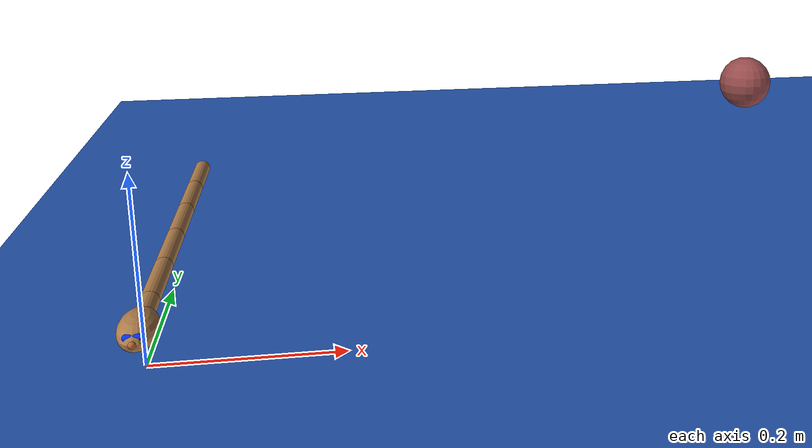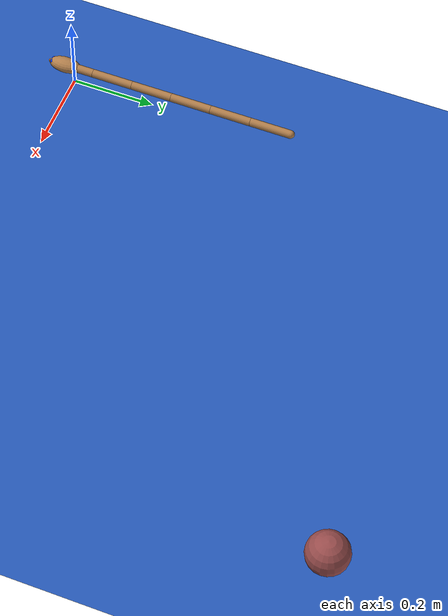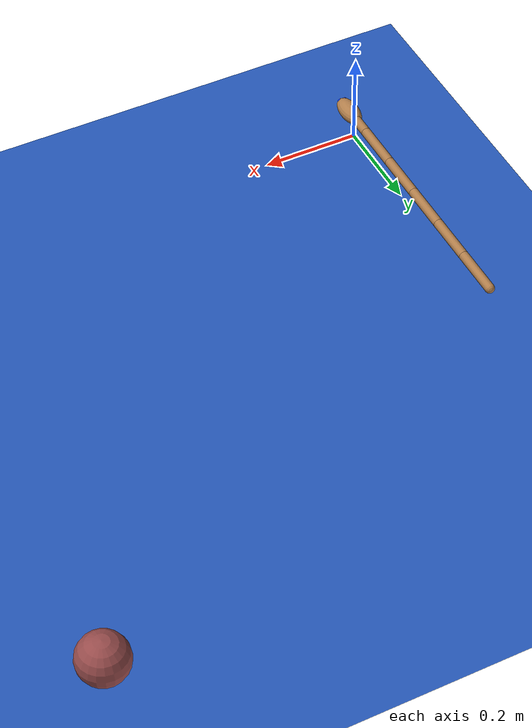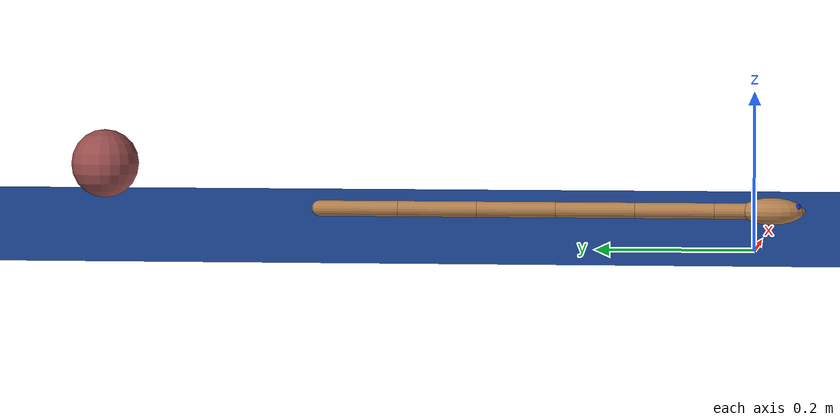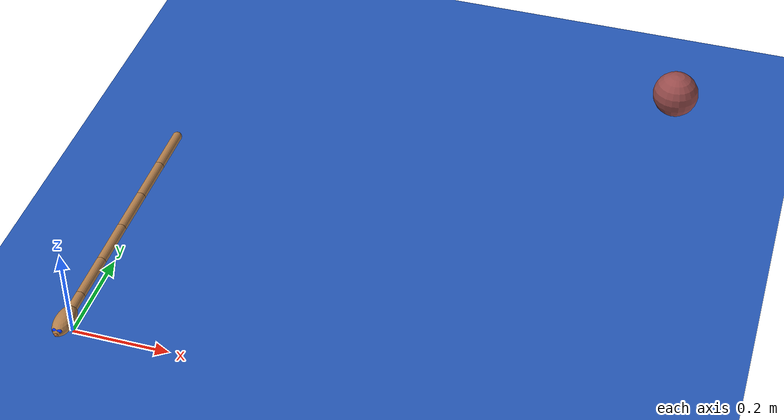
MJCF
<mujoco model="Swimmer">
  <include file="../common.xml" />
  <include file="swimmer.xml" />

  <custom>
    <numeric name="agent_planner" data="2" />
    <numeric name="agent_horizon" data="2" />
    <numeric name="agent_timestep" data="0.01" />
    <numeric name="agent_integrator" data="2" />
    <numeric name="agent_policy_width" data="0.0015" />
    <numeric name="sampling_spline_points" data="10" />
    <numeric name="sampling_exploration" data="0.05" />
    <numeric name="gradient_spline_points" data="10" />
  </custom>

  <worldbody>
    <body name="target" mocap="true" pos="1 1 .05">
      <geom name="target" type="sphere" size="0.05" material="target"/>
      <light name="target_light" diffuse=".7 .7 .7" pos="0 0 0.5"/>
    </body>
  </worldbody>

  <sensor>
    <!-- head IMU -->

    <!-- site0 IMU -->

    <!-- site1 IMU -->

    <!-- site2 IMU -->

    <!-- site3 IMU -->

    <!-- site4 IMU -->

    <!-- joints -->
    <jointpos name="rootx" joint="rootx" />
    <jointpos name="rooty" joint="rooty" />
    <jointpos name="rootz" joint="rootz" />
    <jointpos name="joint0" joint="joint_0" />
    <jointpos name="joint1" joint="joint_1" />
    <jointpos name="joint2" joint="joint_2" />
    <jointpos name="joint3" joint="joint_3" />
    <jointpos name="joint4" joint="joint_4" />

    <framepos name="trace0" objtype="geom" objname="nose"/>
    <framepos name="nose" objtype="geom" objname="nose"/>
    <framepos name="target" objtype="body" objname="target"/>
  </sensor>
</mujoco>

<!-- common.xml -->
<mujoco>

  <visual>
    <headlight ambient=".4 .4 .4" diffuse=".8 .8 .8" specular="0.1 0.1 0.1"/>
    <map znear=".01"/>
    <quality shadowsize="2048"/>
    <global elevation="-15"/>
  </visual>

  <asset>
    <texture name="blue_grid" type="2d" builtin="checker" rgb1=".02 .14 .44" rgb2=".27 .55 1" width="300" height="300" mark="edge" markrgb="1 1 1"/>
    <material name="blue_grid" texture="blue_grid" texrepeat="1 1" texuniform="true" reflectance=".2"/>

    <texture name="grey_grid" type="2d" builtin="checker" rgb1=".26 .26 .26" rgb2=".6 .6 .6" width="300" height="300" mark="edge" markrgb="1 1 1"/>
    <material name="grey_grid" texture="grey_grid" texrepeat="1 1" texuniform="true" reflectance=".2"/>
    <texture name="skybox" type="skybox" builtin="gradient" rgb1=".66 .79 1" rgb2=".9 .91 .93" width="800" height="800"/>

    <material name="self" rgba=".7 .5 .3 1"/>
    <material name="self_default" rgba=".7 .5 .3 1"/>
    <material name="self_highlight" rgba="0 .5 .3 1"/>
    <material name="effector" rgba=".7 .4 .2 1"/>
    <material name="effector_default" rgba=".7 .4 .2 1"/>
    <material name="effector_highlight" rgba="0 .5 .3 1"/>
    <material name="decoration" rgba=".2 .6 .3 1"/>
    <material name="eye" rgba="0 .2 1 1"/>
    <material name="target" rgba=".6 .3 .3 1"/>
    <material name="target_default" rgba=".6 .3 .3 1"/>
    <material name="target_highlight" rgba=".6 .3 .3 .4"/>
    <material name="site" rgba=".5 .5 .5 .3"/>
  </asset>
</mujoco>

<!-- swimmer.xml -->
<mujoco model="swimmer">
  <option timestep="0.01" integrator="implicit" density="1000">
    <flag contact="disable"/>
  </option>

  <default>
    <default class="swimmer">
      <joint type="hinge" pos="0 -.05 0" axis="0 0 1" limited="true" solreflimit=".05 .3"
             solimplimit="0 .8 .1" armature="1e-6" range="-90 90" stiffness=".001"/>
      <default class="inertial">
        <geom type="box" size=".001 .05 .01" material="self" mass=".01" group="3"/>
      </default>
      <default class="visual">
        <geom type="capsule" size=".01" fromto="0 -.05 0 0 .05 0" mass="0" material="self"/>
      </default>
      <site size=".01" rgba="0 0 0 0"/>
    </default>
    <default class="free">
      <joint limited="false" stiffness="0" armature="0"/>
    </default>
    <general gainprm="2e-3" ctrllimited="true" ctrlrange="-1 1" dyntype="filter" dynprm="0.6"/>
  </default>

  <worldbody>
    <geom name="ground" type="plane" size="2 2 0.01" material="blue_grid"/>
    <body name="head" pos="0 0 .05" childclass="swimmer">
      <light name="light_1" diffuse=".8 .8 .8" pos="0 0 1.5"/>
      <geom name="head" type="ellipsoid" size=".02 .04 .017" pos="0 -.022 0" mass="0" material="self"/>
      <geom name="nose" type="sphere" pos="0 -.06 0" size=".004" mass="0" material="effector" euler="180 0 0"/>
      <geom name="eyes" type="capsule" fromto="-.006 -.054 .005 .006 -.054 .005" size=".004" mass="0" material="eye"/>
      <camera name="tracking1" pos="0.0 -0.2 0.5" xyaxes="1 0 0 0 1 1" mode="trackcom" fovy="60"/>
      <camera name="tracking2" pos="-0.9 0.5 0.15" xyaxes="0 -1 0 .3 0 1" mode="trackcom" fovy="60"/>
      <camera name="eyes" pos="0 -.058 .005" xyaxes="-1 0 0 0 0 1"/>
      <joint name="rootx" class="free" type="slide" axis="1 0 0" pos="0 -.05 0"/>
      <joint name="rooty" class="free" type="slide" axis="0 1 0" pos="0 -.05 0"/>
      <joint name="rootz" class="free" type="hinge" axis="0 0 1" pos="0 -.05 0"/>
      <geom name="inertial" class="inertial"/>
      <geom name="visual" class="visual"/>
      <site name="head"/>
      <body name="segment_0" pos="0 .1 0">
        <geom class="visual" name="visual_0"/>
        <geom class="inertial" name="inertial_0"/>
        <site name="site_0"/>
        <joint name="joint_0"/>
        <body name="segment_1" pos="0 .1 0">
          <geom class="visual" name="visual_1"/>
          <geom class="inertial" name="inertial_1"/>
          <site name="site_1"/>
          <joint name="joint_1"/>
          <body name="segment_2" pos="0 .1 0">
            <geom class="visual" name="visual_2"/>
            <geom class="inertial" name="inertial_2"/>
            <site name="site_2"/>
            <joint name="joint_2"/>
            <body name="segment_3" pos="0 .1 0">
              <geom class="visual" name="visual_3"/>
              <geom class="inertial" name="inertial_3"/>
              <site name="site_3"/>
              <joint name="joint_3"/>
              <body name="segment_4" pos="0 .1 0">
                <geom class="visual" name="visual_4"/>
                <geom class="inertial" name="inertial_4"/>
                <site name="site_4"/>
                <joint name="joint_4"/>
              </body>
            </body>
          </body>
        </body>
      </body>
    </body>
  </worldbody>

  <actuator>
    <general name="0" joint="joint_0"/>
    <general name="1" joint="joint_1"/>
    <general name="2" joint="joint_2"/>
    <general name="3" joint="joint_3"/>
    <general name="4" joint="joint_4"/>
  </actuator>

</mujoco>
